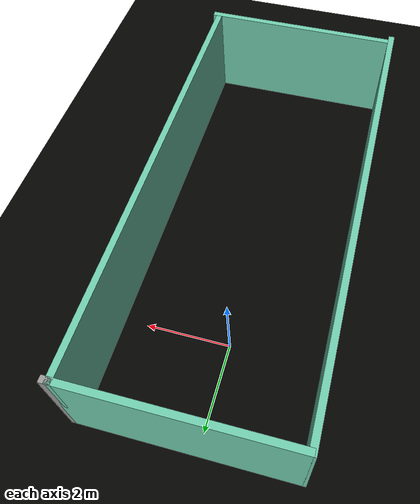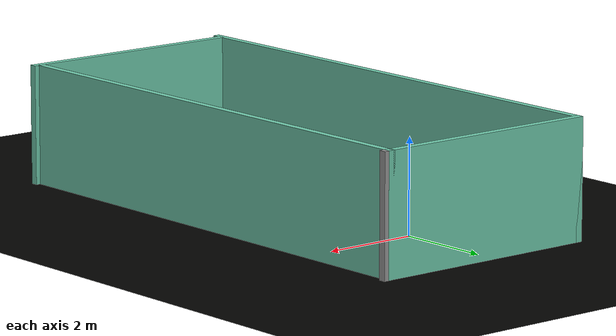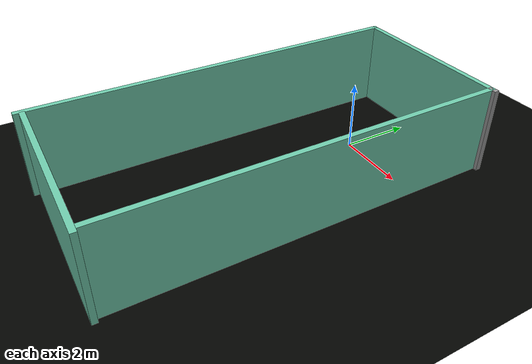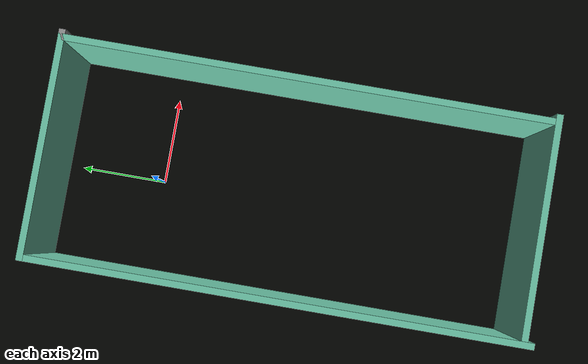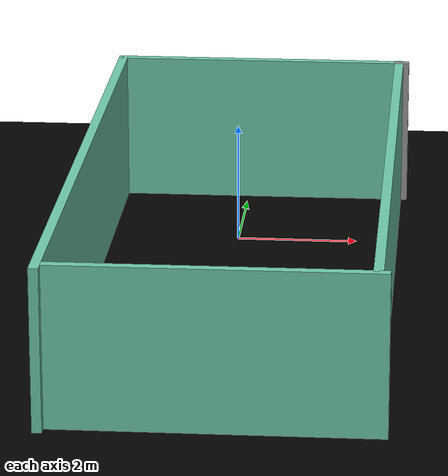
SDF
<sdf version="1.7">
 <world name="default">
  <light name="sun" type="directional">
   <pose>0 0 10 0 -0 0</pose>
   <diffuse>0.8 0.8 0.8 1</diffuse>
   <specular>0.2 0.2 0.2 1</specular>
   <attenuation>
    <range>1000</range>
    <constant>0.9</constant>
    <linear>0.01</linear>
    <quadratic>0.001</quadratic>
   </attenuation>
   <direction>-0.5 0.1 -0.9</direction>
   <spot><inner_angle>0</inner_angle><outer_angle>0</outer_angle><falloff>0</falloff></spot>
  </light>
  <model name="ground_plane">
   <static>1</static>
   <link name="link">
    <collision name="collision">
     <geometry><plane><normal>0 0 1</normal><size>100 100</size></plane></geometry>
     <surface>
      <contact><collide_bitmask>65535</collide_bitmask></contact>
      <friction><ode><mu>100</mu><mu2>50</mu2></ode></friction>
     </surface>
    </collision>
    <visual name="target_visual_1">
     <geometry><sphere><radius>0.2</radius></sphere></geometry>
     <material><ambient>1 0.1 4 1</ambient><diffuse>1 2 0 1</diffuse></material>
     <pose>0 -1 1 0 0 0</pose>
     <cast_shadows>0</cast_shadows>
    </visual>
    <visual name="target_visual_2">
     <geometry><box><size>0.4 0.4 0.4</size></box></geometry>
     <material><ambient>1 1 3 1</ambient><diffuse>1 0 0 1</diffuse></material>
     <pose>0 -2.5 1 0 0 0</pose>
     <cast_shadows>0</cast_shadows>
    </visual>
    <visual name="target_visual_3">
     <geometry><box><size>0.2 0.2 0.4</size></box></geometry>
     <material><ambient>1 3 1 1</ambient><diffuse>1 0 1 1</diffuse></material>
     <pose>0 -4 1 0 0 0</pose>
     <cast_shadows>0</cast_shadows>
    </visual>
    <visual name="visual">
     <cast_shadows>0</cast_shadows>
     <geometry><plane><normal>0 0 1</normal><size>100 100</size></plane></geometry>
     <material>
      <script><uri>file://media/materials/scripts/gazebo.material</uri><name>Gazebo/Grey</name></script>
     </material>
    </visual>
   </link>
  </model>
  <gravity>0 0 -9.8</gravity>
  <magnetic_field>6e-06 2.3e-05 -4.2e-05</magnetic_field>
  <atmosphere type="adiabatic"/>
  <physics type="ode">
   <max_step_size>0.001</max_step_size>
   <real_time_factor>1</real_time_factor>
   <real_time_update_rate>1000</real_time_update_rate>
  </physics>
  <scene><ambient>0.4 0.4 0.4 1</ambient><background>0.7 0.7 0.7 1</background><shadows>1</shadows></scene>
  <spherical_coordinates>
   <surface_model>EARTH_WGS84</surface_model>
   <latitude_deg>0</latitude_deg>
   <longitude_deg>0</longitude_deg>
   <elevation>0</elevation>
   <heading_deg>0</heading_deg>
  </spherical_coordinates>
  <model name="Untitled">
   <pose>0.255903 -3.13739 0 0 -0 0</pose>
   <link name="Wall_15">
    <collision name="Wall_15_Collision">
     <geometry><box><size>5 0.15 2.5</size></box></geometry>
     <pose>0 0 1.25 0 -0 0</pose>
    </collision>
    <visual name="Wall_15_Visual">
     <pose>0 0 1.25 0 -0 0</pose>
     <geometry><box><size>5 0.15 2.5</size></box></geometry>
     <material>
      <script><uri>file://media/materials/scripts/gazebo.material</uri><name>Gazebo/Grey</name></script>
      <ambient>0.435294 0.796078 0.67451 1</ambient>
     </material>
     <meta><layer>0</layer></meta>
    </visual>
    <pose>-0.05 5.55 0 0 -0 0</pose>
   </link>
   <link name="Wall_16">
    <collision name="Wall_16_Collision">
     <geometry><box><size>0.25 0.15 2.5</size></box></geometry>
     <pose>0 0 1.25 0 -0 0</pose>
    </collision>
    <visual name="Wall_16_Visual">
     <pose>0 0 1.25 0 -0 0</pose>
     <geometry><box><size>0.25 0.15 2.5</size></box></geometry>
     <material>
      <script><uri>file://media/materials/scripts/gazebo.material</uri><name>Gazebo/Grey</name></script>
      <ambient>1 1 1 1</ambient>
     </material>
     <meta><layer>0</layer></meta>
    </visual>
    <pose>2.425 5.55 0 0 -0 0</pose>
   </link>
   <link name="Wall_20">
    <collision name="Wall_20_Collision">
     <geometry><box><size>5 0.15 2.5</size></box></geometry>
     <pose>0 0 1.25 0 -0 0</pose>
    </collision>
    <visual name="Wall_20_Visual">
     <pose>0 0 1.25 0 -0 0</pose>
     <geometry><box><size>5 0.15 2.5</size></box></geometry>
     <material>
      <script><uri>file://media/materials/scripts/gazebo.material</uri><name>Gazebo/Grey</name></script>
      <ambient>0.435294 0.796078 0.67451 1</ambient>
     </material>
     <meta><layer>0</layer></meta>
    </visual>
    <pose>0.05 -5.4 0 0 -0 3.14159</pose>
   </link>
   <link name="Wall_22">
    <collision name="Wall_22_Collision">
     <geometry><box><size>11.25 0.15 2.5</size></box></geometry>
     <pose>0 0 1.25 0 -0 0</pose>
    </collision>
    <visual name="Wall_22_Visual">
     <pose>0 0 1.25 0 -0 0</pose>
     <geometry><box><size>11.25 0.15 2.5</size></box></geometry>
     <material>
      <script><uri>file://media/materials/scripts/gazebo.material</uri><name>Gazebo/Grey</name></script>
      <ambient>0.435294 0.796078 0.67451 1</ambient>
     </material>
     <meta><layer>0</layer></meta>
    </visual>
    <pose>-2.475 0 0 0 -0 -1.5708</pose>
   </link>
   <link name="Wall_24">
    <collision name="Wall_24_Collision">
     <geometry><box><size>11 0.15 2.5</size></box></geometry>
     <pose>0 0 1.25 0 -0 0</pose>
    </collision>
    <visual name="Wall_24_Visual">
     <pose>0 0 1.25 0 -0 0</pose>
     <geometry><box><size>11 0.15 2.5</size></box></geometry>
     <material>
      <script><uri>file://media/materials/scripts/gazebo.material</uri><name>Gazebo/Grey</name></script>
      <ambient>0.435294 0.796078 0.67451 1</ambient>
     </material>
     <meta><layer>0</layer></meta>
    </visual>
    <pose>2.375 0.125 0 0 -0 -1.5708</pose>
   </link>
   <static>1</static>
  </model>
 </world>
</sdf>
